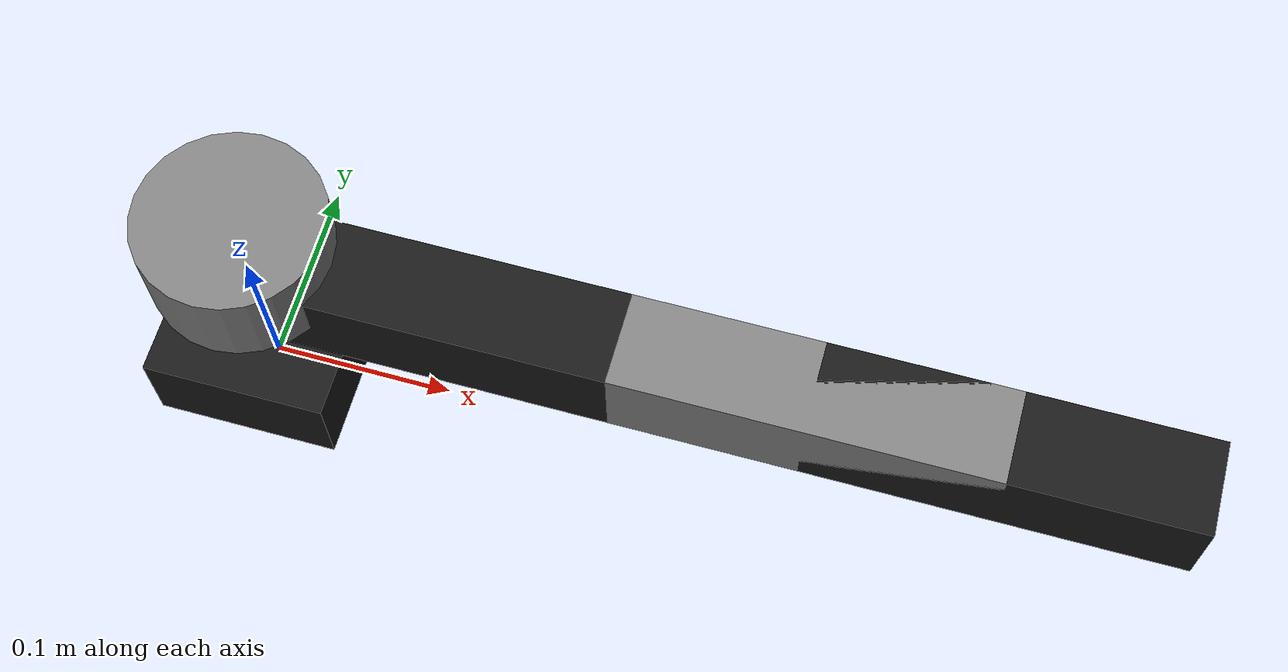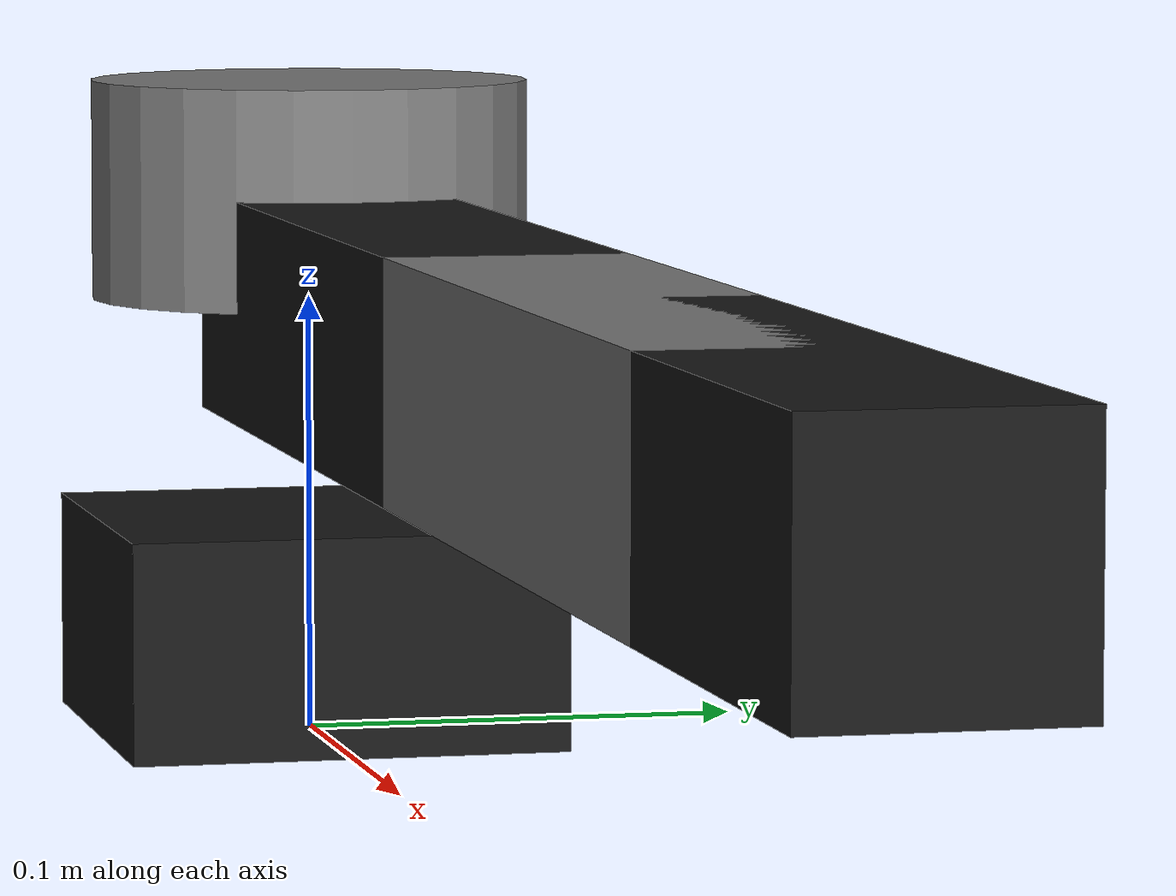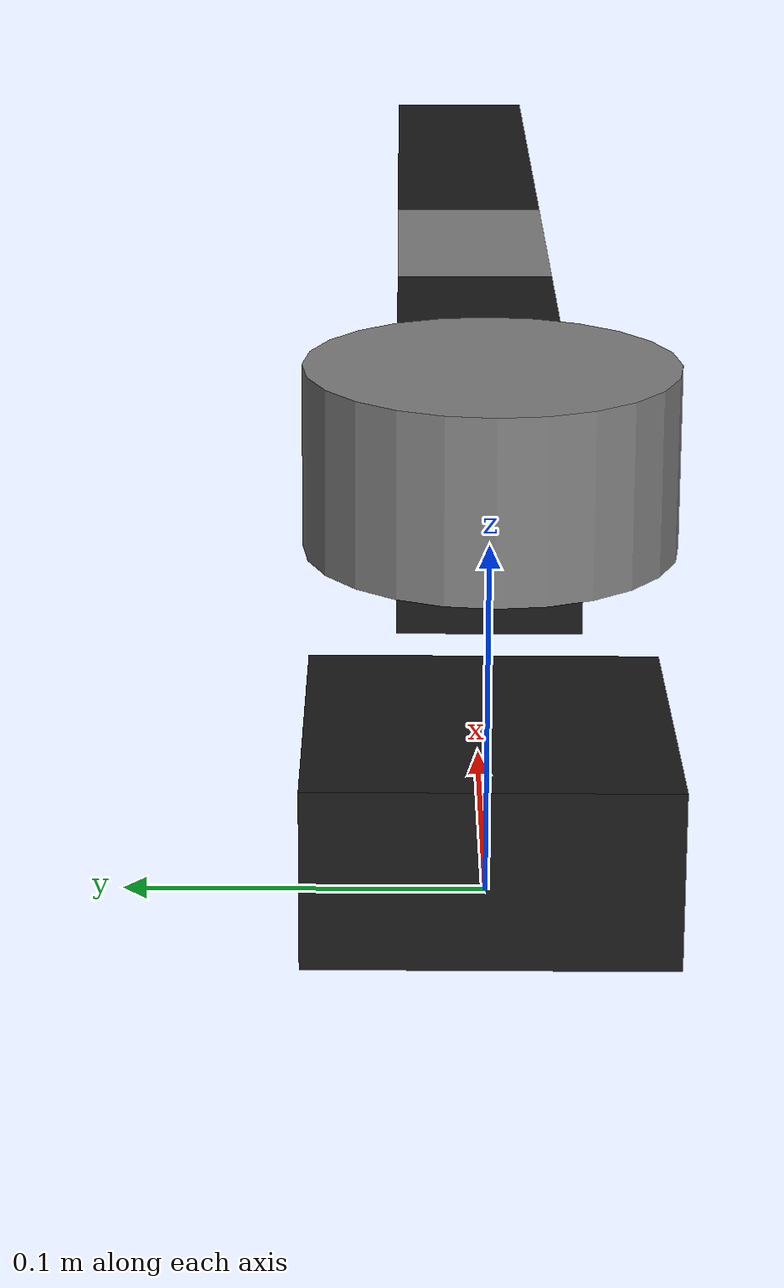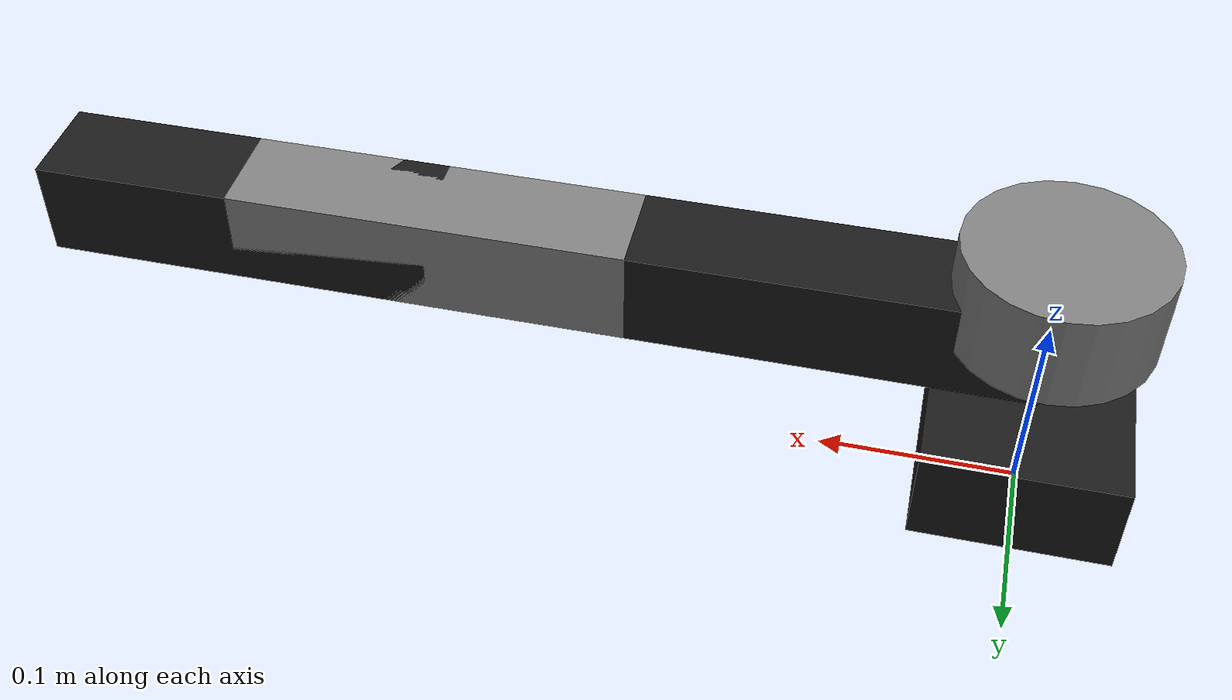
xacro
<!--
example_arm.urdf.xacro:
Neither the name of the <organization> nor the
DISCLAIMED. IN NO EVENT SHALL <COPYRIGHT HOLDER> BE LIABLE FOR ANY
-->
<?xml version="1.0" ?>
<robot name="robot3"
	xmlns:xacro="http://ros.org/wiki/xacro">

	<!-- The following included files set up definitions of parts of the robot body -->
	<include filename="$(find actuator_array_example)/urdf/example_arm.urdf.xacro" />

	<xacro:example_arm_urdf robot_description_parameter="robot_description" />

</robot>

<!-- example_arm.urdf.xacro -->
<!--  Copyright (c) 2011, A.M.Howard, S.Williams                                         -->
<!--  All rights reserved.                                                               -->
<!--  Redistribution and use in source and binary forms, with or without                 -->
<!--  modification, are permitted provided that the following conditions are met:        -->
<!--      * Redistributions of source code must retain the above copyright               -->
<!--        notice, this list of conditions and the following disclaimer.                -->
<!--      * Redistributions in binary form must reproduce the above copyright            -->
<!--        notice, this list of conditions and the following disclaimer in the          -->
<!--        documentation and/or other materials provided with the distribution.         -->
<!--        names of its contributors may be used to endorse or promote products         -->
<!--        derived from this software without specific prior written permission.        -->
<!--  THIS SOFTWARE IS PROVIDED BY THE COPYRIGHT HOLDERS AND CONTRIBUTORS "AS IS" AND    -->
<!--  ANY EXPRESS OR IMPLIED WARRANTIES, INCLUDING, BUT NOT LIMITED TO, THE IMPLIED      -->
<!--  WARRANTIES OF MERCHANTABILITY AND FITNESS FOR A PARTICULAR PURPOSE ARE             -->
<!--  DIRECT, INDIRECT, INCIDENTAL, SPECIAL, EXEMPLARY, OR CONSEQUENTIAL DAMAGES         -->
<!--  (INCLUDING, BUT NOT LIMITED TO, PROCUREMENT OF SUBSTITUTE GOODS OR SERVICES;       -->
<!--  LOSS OF USE, DATA, OR PROFITS; OR BUSINESS INTERRUPTION) HOWEVER CAUSED AND        -->
<!--  ON ANY THEORY OF LIABILITY, WHETHER IN CONTRACT, STRICT LIABILITY, OR TORT         -->
<!--  (INCLUDING NEGLIGENCE OR OTHERWISE) ARISING IN ANY WAY OUT OF THE USE OF THIS      -->
<!--  SOFTWARE, EVEN IF ADVISED OF THE POSSIBILITY OF SUCH DAMAGE.                       -->

<robot xmlns:xacro="http://ros.org/wiki/xacro">

	<!-- The following included files set up definitions of parts of the robot body -->
	<include filename="$(find actuator_array_example)/urdf/example_arm.gazebo.xacro" />

	<property name="pi" value="3.141592654" />

	<xacro:macro name="example_arm_urdf" params="robot_description_parameter">

		<!-- Create a heavy base to which to attach the arm -->
		<link name="base_link">
			<inertial>
				<origin xyz=" 0.00000  0.00000  0.02500" rpy=" 0.00000  0.00000  0.00000" />
				<mass value="100.0" />
				<inertia ixx="0.01" ixy="0.00" ixz="0.00" iyy="0.01" iyz="0.00" izz="0.01" />
			</inertial>

			<collision>
				<origin xyz=" 0.00000  0.00000  0.02500" rpy=" 0.00000  0.00000  0.00000" />
				<contact_coefficients mu="1.0" kp="1.0" kd="1.0" />
				<geometry>
					<box size="0.10000 0.10000 0.05000" />
				</geometry>
			</collision>

			<visual>
				<origin xyz=" 0.00000  0.00000  0.02500" rpy=" 0.00000  0.00000  0.00000" />
				<geometry>
					<box size="0.10000 0.10000 0.05000" />
				</geometry>
				<material name="base_link_color">
					<color rgba="0.1 0.1 0.1 1.0" />
				</material>
			</visual>
		</link>

    	<joint name="joint1" type="revolute">
			<origin xyz=" 0.00000  0.00000  0.05000" rpy=" 0.00000  0.00000  0.00000" />
			<parent link="base_link" />
			<child link="link1" />
			<axis xyz="0 0 1" />
			<limit lower="${-pi/2}" upper="${pi/2}" effort="10.0" velocity="15.71" />
			<dynamics damping="0.0" friction="0.0" />
		</joint>

		<link name="link1">
			<inertial>
				<origin xyz=" 0.00000  0.00000  0.05000" rpy=" 0.00000  0.00000  0.00000" />
				<mass value="0.50" />
				<inertia ixx="0.01" ixy="0.00" ixz="0.00" iyy="0.01" iyz="0.00" izz="0.01" />
			</inertial>

			<collision>
				<origin xyz=" 0.10000  0.00000  0.00000" rpy=" 0.00000  0.00000  0.00000" />
				<contact_coefficients mu="1.0" kp="1.0" kd="1.0" />
				<geometry>
					<cylinder radius="0.05000" length="0.05000" />
				</geometry>
			</collision>

			<visual>
				<origin xyz=" 0.00000  0.00000  0.07500" rpy=" 0.00000  0.00000  0.00000" />
				<geometry>
					<cylinder radius="0.05000" length="0.05000" />
				</geometry>
				<material name="link1_color">
					<color rgba="0.5 0.5 0.5 1.0" />
				</material>
			</visual>
		</link>

    	<joint name="joint2" type="revolute">
			<origin xyz=" 0.00000  0.00000  0.05000" rpy=" 0.00000  0.00000  0.00000" />
			<parent link="link1" />
			<child link="link2" />
			<axis xyz="0 1 0" />
			<limit lower="${-pi}" upper="0.00000" effort="10.0" velocity="15.71" />
			<dynamics damping="0.0" friction="0.0" />
		</joint>

		<link name="link2">
			<inertial>
				<origin xyz=" 0.10000  0.00000  0.00000" rpy=" 0.00000  0.00000  0.00000" />
				<mass value="0.30" />
				<inertia ixx="0.01" ixy="0.00" ixz="0.00" iyy="0.01" iyz="0.00" izz="0.01" />
			</inertial>

			<collision>
				<origin xyz=" 0.10000  0.00000  0.00000" rpy=" 0.00000  0.00000  0.00000" />
				<contact_coefficients mu="1.0" kp="1.0" kd="1.0" />
				<geometry>
					<box size="0.20000 0.05000 0.05000" />
				</geometry>
			</collision>

			<visual>
				<origin xyz=" 0.10000  0.00000  0.00000" rpy=" 0.00000  0.00000  0.00000" />
				<geometry>
					<box size="0.20000 0.05000 0.05000" />
				</geometry>
				<material name="link2_color">
					<color rgba="0.1 0.1 0.1 1.0" />
				</material>
			</visual>
		</link>

        <joint name="joint3" type="revolute">
			<origin xyz=" 0.20000  0.00000  0.00000" rpy=" 0.00000  0.00000  0.00000" />
			<parent link="link2" />
			<child link="link3" />
			<axis xyz="0 1 0" />
			<limit lower="0.00000" upper="${pi}" effort="10.0" velocity="15.71" />
			<dynamics damping="0.0" friction="0.0" />
		</joint>

		<link name="link3">
			<inertial>
				<origin xyz=" 0.10000  0.00000  0.00000" rpy=" 0.00000  0.00000  0.00000" />
				<mass value="0.10" />
				<inertia ixx="0.01" ixy="0.00" ixz="0.00" iyy="0.01" iyz="0.00" izz="0.01" />
			</inertial>

			<collision>
				<origin xyz=" 0.10000  0.00000  0.00000" rpy=" 0.00000  0.00000  0.00000" />
				<contact_coefficients mu="1.0" kp="1.0" kd="1.0" />
				<geometry>
					<box size="0.20000 0.05000 0.05000" />
				</geometry>
			</collision>

			<visual>
				<origin xyz=" 0.10000  0.00000  0.00000" rpy=" 0.00000  0.00000  0.00000" />
				<geometry>
					<box size="0.20000 0.05000 0.05000" />
				</geometry>
				<material name="link3_color">
					<color rgba="0.5 0.5 0.5 1.0" />
				</material>
			</visual>
		</link>

        <joint name="joint4" type="revolute">
			<origin xyz=" 0.10000  0.00000  0.00000" rpy=" 0.00000  0.00000  0.00000" />
			<parent link="link3" />
			<child link="link4" />
			<axis xyz="0 1 0" />
			<limit lower="0.00000" upper="${pi/2}" effort="10.0" velocity="15.71" />
			<dynamics damping="0.0" friction="0.0" />
		</joint>

		<link name="link4">
			<inertial>
				<origin xyz=" 0.10000  0.00000  0.00000" rpy=" 0.00000  0.00000  0.00000" />
				<mass value="0.10" />
				<inertia ixx="0.01" ixy="0.00" ixz="0.00" iyy="0.01" iyz="0.00" izz="0.01" />
			</inertial>

			<collision>
				<origin xyz=" 0.10000  0.00000  0.00000" rpy=" 0.00000  0.00000  0.00000" />
				<contact_coefficients mu="1.0" kp="1.0" kd="1.0" />
				<geometry>
					<box size="0.20000 0.05000 0.05000" />
				</geometry>
			</collision>

			<visual>
				<origin xyz=" 0.10000  0.00000  0.00000" rpy=" 0.00000  0.00000  0.00000" />
				<geometry>
					<box size="0.20000 0.05000 0.05000" />
				</geometry>
				<material name="link4_color">
					<color rgba="0.1 0.1 0.1 1.0" />
				</material>
			</visual>
		</link>

		<!-- Add additional information for simulation/control -->
	 	<xacro:example_arm_gazebo robot_description_parameter="${robot_description_parameter}" />

	</xacro:macro>

</robot>
